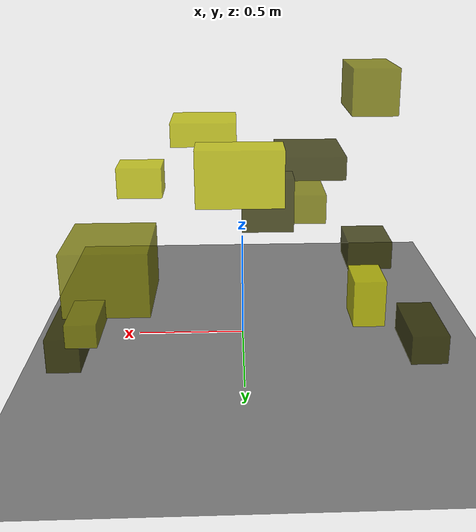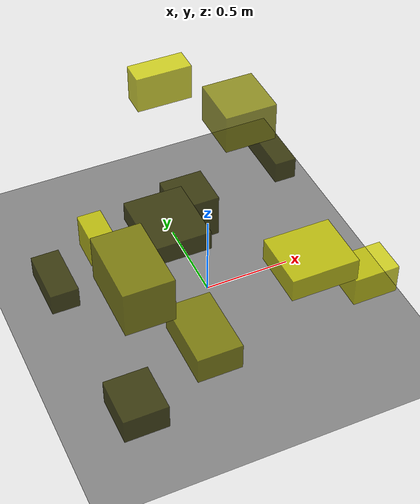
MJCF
<?xml version="1.0"?>
<mujoco model="obstacle_scene">
  <compiler angle="radian" coordinate="local"/>
  <option timestep="0.001" gravity="0 0 -9.81"/>

  <asset>
    <material name="obstacle_mat" rgba="0.8 0.8 0.0 0.8"/>
    <material name="ground_mat" rgba="0.5 0.5 0.5 1"/>
  </asset>

  <worldbody>
    <!-- Ground plane -->
    <geom name="ground" type="plane" size="3 3 0.1" material="ground_mat"/>

    <!-- Obstacles -->
    <body name="obstacle_0" pos="-0.116447 -0.020300 0.676508">
      <geom name="obs_0" type="box" size="0.117261 0.116644 0.125361" rgba="0.2 0.2 0.0 0.8"/>
    </body>
    <body name="obstacle_1" pos="0.502769 0.664580 0.624456">
      <geom name="obs_1" type="box" size="0.158151 0.165895 0.122902" rgba="0.5 0.5 0.0 0.8"/>
    </body>
    <body name="obstacle_2" pos="0.017161 0.672468 0.986658">
      <geom name="obs_2" type="box" size="0.160836 0.068715 0.107489" rgba="0.8 0.8 0.0 0.8"/>
    </body>
    <body name="obstacle_3" pos="-0.724532 -0.720976 0.150574">
      <geom name="obs_3" type="box" size="0.123184 0.141630 0.078075" rgba="0.2 0.2 0.0 0.8"/>
    </body>
    <body name="obstacle_4" pos="-0.337915 -0.695310 0.456653">
      <geom name="obs_4" type="box" size="0.121243 0.197303 0.079248" rgba="0.5 0.5 0.0 0.8"/>
    </body>
    <body name="obstacle_5" pos="0.554277 -0.738858 0.571055">
      <geom name="obs_5" type="box" size="0.123249 0.099043 0.085337" rgba="0.8 0.8 0.0 0.8"/>
    </body>
    <body name="obstacle_6" pos="-0.802950 0.282575 0.128349">
      <geom name="obs_6" type="box" size="0.080905 0.167284 0.066576" rgba="0.2 0.2 0.0 0.8"/>
    </body>
    <body name="obstacle_7" pos="-0.711446 -0.747013 1.076693">
      <geom name="obs_7" type="box" size="0.123245 0.199805 0.125033" rgba="0.5 0.5 0.0 0.8"/>
    </body>
    <body name="obstacle_8" pos="-0.536657 0.314299 0.331567">
      <geom name="obs_8" type="box" size="0.068222 0.095257 0.103659" rgba="0.8 0.8 0.0 0.8"/>
    </body>
    <body name="obstacle_9" pos="-0.328459 -0.227835 0.809058">
      <geom name="obs_9" type="box" size="0.158984 0.188302 0.055545" rgba="0.2 0.2 0.0 0.8"/>
    </body>
    <body name="obstacle_10" pos="0.557071 0.851202 0.531917">
      <geom name="obs_10" type="box" size="0.053528 0.174409 0.041759" rgba="0.5 0.5 0.0 0.8"/>
    </body>
    <body name="obstacle_11" pos="0.196099 -0.768033 0.843717">
      <geom name="obs_11" type="box" size="0.177157 0.156771 0.064349" rgba="0.8 0.8 0.0 0.8"/>
    </body>
    <body name="obstacle_12" pos="0.684381 0.592250 0.325058">
      <geom name="obs_12" type="box" size="0.063979 0.195700 0.068582" rgba="0.2 0.2 0.0 0.8"/>
    </body>
  </worldbody>
</mujoco>
